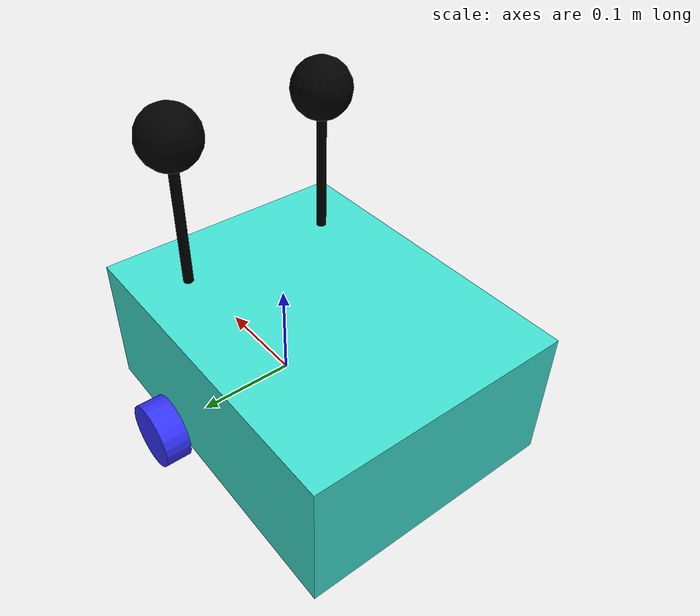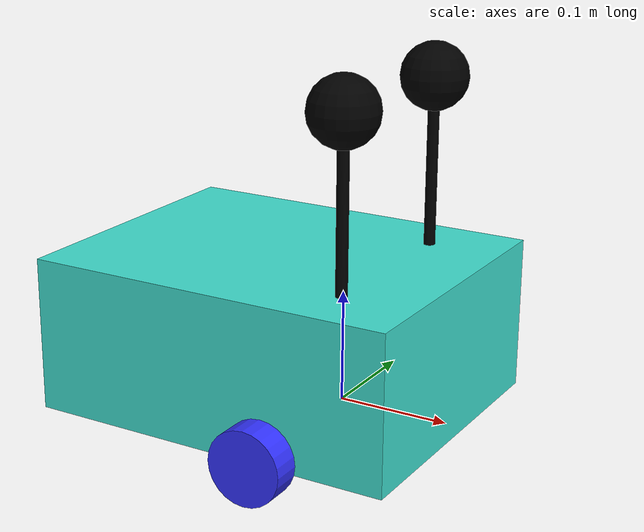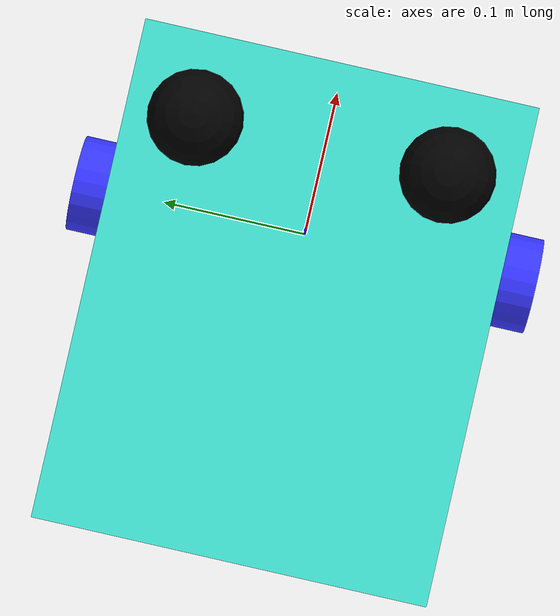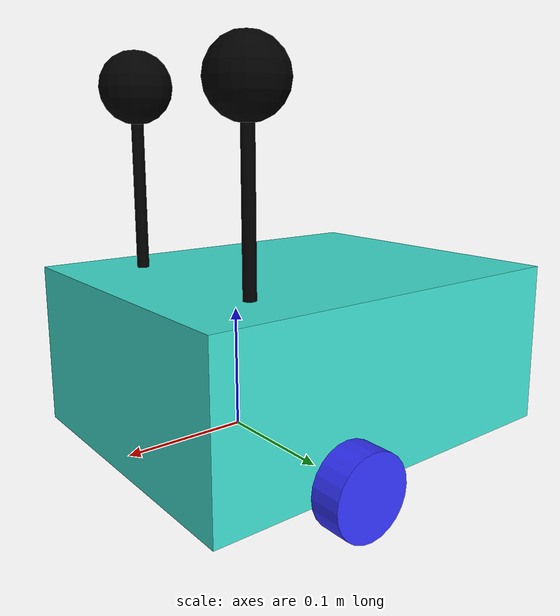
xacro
<?xml version="1.0"?>
<robot name='robot' xmlns:xacro="http://ros.org/wiki/xacro">

    <xacro:include filename="$(find robot_description)/urdf/gazebo.urdf.xacro" />
    <!--xacro:include
    filename="$(find robot_description)/urdf/lidar.urdf.xacro" /-->
    <!--xacro:include
    filename="$(find robot_description)/urdf/depth.urdf.xacro" /-->

    <xacro:property name="chassis_length" value="0.335" />
    <xacro:property name="chassis_width" value="0.265" />
    <xacro:property name="chassis_height" value="0.138" />
    <xacro:property name="wheel_radius" value="0.033"/>
    <xacro:property name="wheel_thickness" value="0.026"/>
    <xacro:property name="wheel_mass" value="0.05"/>
    <xacro:property name="wheel_offset_x" value="0.226"/>
    <xacro:property name="wheel_offset_y" value="0.1485"/>
    <xacro:property name="wheel_offset_z" value="0.01"/>
    <xacro:property name="caster_wheel_radius" value="0.03" />
    <xacro:property name="caster_wheel_mass" value="0.01" />
    <xacro:property name="caster_wheel_offset_x" value="0.075" />
    <xacro:property name="caster_wheel_offset_z"
    value="${wheel_offset_z - wheel_radius + caster_wheel_radius}" />
    <xacro:property name="mass" value="1.0" />

    <xacro:property name="antenna_radius" value="0.005"/>
    <xacro:property name="antenna_length" value="0.15"/>
    <xacro:property name="antenna_mass" value="0.01"/>
    <xacro:property name="antenna_color" value="black"/>

    <!-- Координаты установки антенн относительно корпуса -->
    <xacro:property name="antenna1_x" value="${chassis_length * 0.8}"/>  <!-- Задняя часть корпуса -->
    <xacro:property name="antenna1_y" value="${chassis_width * 0.3}"/>   <!-- Правая сторона -->
    <xacro:property name="antenna1_z" value="${chassis_height}"/>        <!-- Верх корпуса -->

    <xacro:property name="antenna2_x" value="${chassis_length * 0.8}"/>  <!-- Задняя часть корпуса -->
    <xacro:property name="antenna2_y" value="${-chassis_width * 0.3}"/>  <!-- Левая сторона -->
    <xacro:property name="antenna2_z" value="${chassis_height}"/>

    <material name="white">
        <color rgba="0.71 0.75 1 1" />
    </material>

    <material name="orange">
        <color rgba="0.25 0.88 0.82 1" />  <!-- светло-бирюзовый / морская волна -->
    </material>

    <material name="blue">
        <color rgba="0.2 0.2 1 1"/>
    </material>

    <material name="black">
        <color rgba="0 0 0 1" />
    </material>

    <material name="red">
        <color rgba="1 0 0 1" />
    </material>

    <link name="base_link">
    </link>

    <link name="base_footprint">
    </link>

    <joint name="base_footprint_joint" type="fixed">
    <parent link="base_link" />
    <child link="base_footprint" />
    <origin xyz="0 0 -0.138" rpy="0 0 0" />
    </joint>

    <joint name="chassis_joint" type="fixed">
    <parent link="base_link" />
    <child link="chassis" />
    <origin xyz="${-wheel_offset_x} 0 ${-wheel_offset_z}" />
    </joint>

    <link name='chassis'>

    <inertial>
        <origin xyz="${chassis_length/2} 0 ${chassis_height/2}" rpy="0 0 0" />
        <mass value="${mass}" />
        <inertia ixx="${(1/12) * mass * (chassis_width*chassis_width+chassis_height*chassis_height)}"
        ixy="0.0" ixz="0.0"
        iyy="${(1/12) * mass * (chassis_length*chassis_length+chassis_height*chassis_height)}"
        iyz="0.0"
        izz="${(1/12) * mass * (chassis_length*chassis_length+chassis_width*chassis_width)}" />
    </inertial>
    <visual>
        <origin xyz="${chassis_length/2} 0 ${chassis_height/2}" />
        <geometry>
        <box size="${chassis_length} ${chassis_width} ${chassis_height}" />
        </geometry>
        <material name="orange" />
    </visual>
    <collision>
        <origin xyz="${chassis_length/2} 0 ${chassis_height/2}" />
        <geometry>
        <box size="${chassis_length} ${chassis_width} ${chassis_height}" />
        </geometry>
    </collision>
    </link>

    <gazebo reference="chassis">
    <material>Gazebo/SeaGreen</material>
    </gazebo>

    <joint name="left_wheel_joint" type="continuous">
    <parent link="base_link" />
    <child link="left_wheel" />
    <origin xyz="0 ${wheel_offset_y} 0" rpy="-${pi/2} 0 0" />
    <axis xyz="0 0 1" />
    </joint>

    <link name="left_wheel">
        <visual>
            <geometry>
                <cylinder radius="${wheel_radius}" length="${wheel_thickness}"/>
            </geometry>
            <material name="blue"/>
        </visual>
        <collision>
            <geometry>
                <sphere radius="${wheel_radius}"/>
            </geometry>
        </collision>
        <inertial>
            <origin xyz="0 0 0" rpy="0 0 0"/>
            <mass value="${wheel_mass}" />
            <inertia ixx="${(1/12) * wheel_mass * (3*wheel_radius*wheel_radius + wheel_thickness*wheel_thickness)}" ixy="0.0" ixz="0.0"
                     iyy="${(1/12) * wheel_mass * (3*wheel_radius*wheel_radius + wheel_thickness*wheel_thickness)}" iyz="0.0"
                     izz="${(1/2) * wheel_mass * (wheel_radius*wheel_radius)}" />
        </inertial>
    </link>

    <gazebo reference="left_wheel">
    <material>Gazebo/Blue</material>
    </gazebo>

    <joint name="right_wheel_joint" type="continuous">
    <parent link="base_link" />
    <child link="right_wheel" />
    <origin xyz="0 ${-wheel_offset_y} 0" rpy="${pi/2} 0 0" />
    <axis xyz="0 0 -1" />
    </joint>

    <link name="right_wheel">
        <visual>
            <geometry>
                <cylinder radius="${wheel_radius}" length="${wheel_thickness}"/>
            </geometry>
            <material name="blue"/>
        </visual>
        <collision>
            <geometry>
                <sphere radius="${wheel_radius}"/>
            </geometry>
        </collision>
        <inertial>
            <origin xyz="0 0 0" rpy="0 0 0"/>
            <mass value="${wheel_mass}" />
            <inertia ixx="${(1/12) * wheel_mass * (3*wheel_radius*wheel_radius + wheel_thickness*wheel_thickness)}" ixy="0.0" ixz="0.0"
                     iyy="${(1/12) * wheel_mass * (3*wheel_radius*wheel_radius + wheel_thickness*wheel_thickness)}" iyz="0.0"
                     izz="${(1/2) * wheel_mass * (wheel_radius*wheel_radius)}" />
        </inertial>
    </link>

    <gazebo reference="right_wheel">
    <material>Gazebo/Blue</material>
    </gazebo>

    <joint name="caster_wheel_joint" type="fixed">
    <parent link="chassis" />
    <child link="caster_wheel" />
    <origin xyz="${caster_wheel_offset_x} 0 ${caster_wheel_offset_z}" />
    </joint>

    <link name="caster_wheel">
    <visual>
        <geometry>
        <sphere radius="${caster_wheel_radius}" />
        </geometry>
        <material name="white" />
    </visual>
    <collision>
        <geometry>
        <sphere radius="${caster_wheel_radius}" />
        </geometry>
    </collision>
    <inertial>
        <origin xyz="0 0 0" rpy="0 0 0" />
        <mass value="${caster_wheel_mass}" />
        <inertia ixx="${(2/5) * caster_wheel_mass * (caster_wheel_radius*caster_wheel_radius)}"
        ixy="0.0" ixz="0.0"
        iyy="${(2/5) * caster_wheel_mass * (caster_wheel_radius*caster_wheel_radius)}" iyz="0.0"
        izz="${(2/5) * caster_wheel_mass * (caster_wheel_radius*caster_wheel_radius)}" />
    </inertial>
    </link>

    <gazebo reference="caster_wheel">
    <material>Gazebo/White</material>
    <mu1 value="0.001" />
    <mu2 value="0.001" />
    </gazebo>

    <!-- Первая антенна (правая) -->
    <link name="antenna_1">
    <inertial>
        <origin xyz="0 0 ${antenna_length/2}" rpy="0 0 0"/>
        <mass value="${antenna_mass}" />
        <inertia ixx="${(1/12) * antenna_mass * (3*antenna_radius*antenna_radius + antenna_length*antenna_length)}" ixy="0.0" ixz="0.0"
                    iyy="${(1/12) * antenna_mass * (3*antenna_radius*antenna_radius + antenna_length*antenna_length)}" iyz="0.0"
                    izz="${(1/2) * antenna_mass * antenna_radius*antenna_radius}" />
    </inertial>

    <visual>
        <origin xyz="0 0 ${antenna_length/2}" rpy="0 0 0"/>
        <geometry>
            <cylinder radius="${antenna_radius}" length="${antenna_length}"/>
        </geometry>
        <material name="${antenna_color}"/>
    </visual>

    <collision>
        <origin xyz="0 0 ${antenna_length/2}" rpy="0 0 0"/>
        <geometry>
            <cylinder radius="${antenna_radius}" length="${antenna_length}"/>
        </geometry>
    </collision>
    </link>

    <joint name="antenna_1_joint" type="fixed">
    <parent link="chassis"/>  <!-- Привязка к корпусу -->
    <child link="antenna_1"/>
    <origin xyz="${antenna1_x} ${antenna1_y} ${antenna1_z}" rpy="0 0 0"/>
    </joint>

    <!-- Вторая антенна (левая) -->
    <link name="antenna_2">
    <inertial>
        <origin xyz="0 0 ${antenna_length/2}" rpy="0 0 0"/>
        <mass value="${antenna_mass}" />
        <inertia ixx="${(1/12) * antenna_mass * (3*antenna_radius*antenna_radius + antenna_length*antenna_length)}" ixy="0.0" ixz="0.0"
                    iyy="${(1/12) * antenna_mass * (3*antenna_radius*antenna_radius + antenna_length*antenna_length)}" iyz="0.0"
                    izz="${(1/2) * antenna_mass * antenna_radius*antenna_radius}" />
    </inertial>

    <visual>
        <origin xyz="0 0 ${antenna_length/2}" rpy="0 0 0"/>
        <geometry>
            <cylinder radius="${antenna_radius}" length="${antenna_length}"/>
        </geometry>
        <material name="${antenna_color}"/>
    </visual>

    <collision>
        <origin xyz="0 0 ${antenna_length/2}" rpy="0 0 0"/>
        <geometry>
            <cylinder radius="${antenna_radius}" length="${antenna_length}"/>
        </geometry>
    </collision>
    </link>

    <joint name="antenna_2_joint" type="fixed">
    <parent link="chassis"/>  <!-- Привязка к корпусу -->
    <child link="antenna_2"/>
    <origin xyz="${antenna2_x} ${antenna2_y} ${antenna2_z}" rpy="0 0 0"/>
    </joint>

    <!-- Gazebo материалы для антенн -->
    <gazebo reference="antenna_1">
    <material>Gazebo/Black</material>
    </gazebo>

    <gazebo reference="antenna_2">
    <material>Gazebo/Black</material>
    </gazebo>

    <!-- Глаза на антеннах -->
    <link name="eye_left">
        <visual>
        <origin xyz="0 0 0.15" rpy="0 0 0"/>
        <geometry>
            <sphere radius="0.03"/>
        </geometry>
        <material name="black"/>
        </visual>
    </link>

    <joint name="eye_left_joint" type="fixed">
        <parent link="antenna_1"/>
        <child link="eye_left"/>
        <origin xyz="0 0 0" rpy="0 0 0"/>
    </joint>

    <link name="eye_right">
        <visual>
        <origin xyz="0 0 0.15" rpy="0 0 0"/>
        <geometry>
            <sphere radius="0.03"/>
        </geometry>
        <material name="black"/>
        </visual>
    </link>

    <joint name="eye_right_joint" type="fixed">
        <parent link="antenna_2"/>
        <child link="eye_right"/>
        <origin xyz="0 0 0" rpy="0 0 0"/>
    </joint>

</robot>
